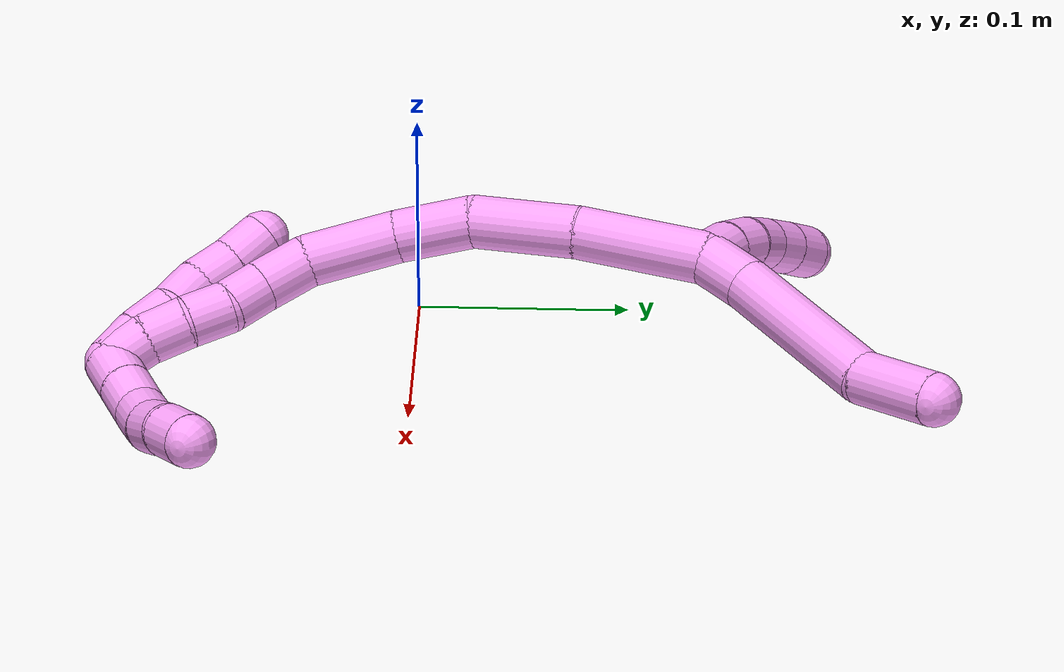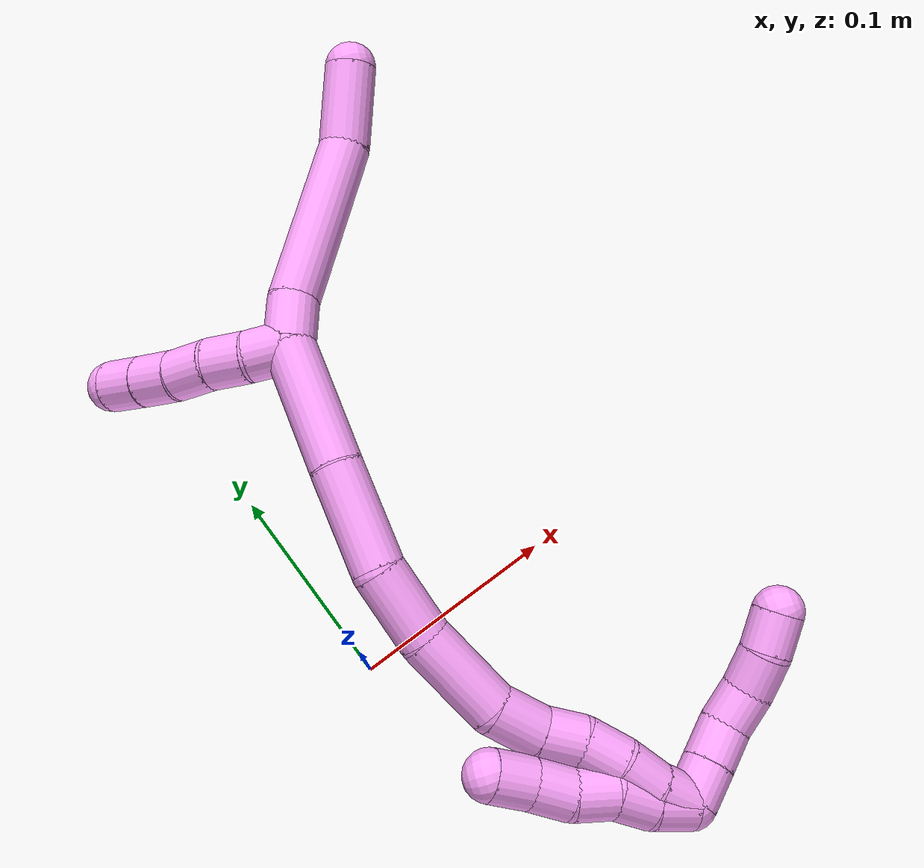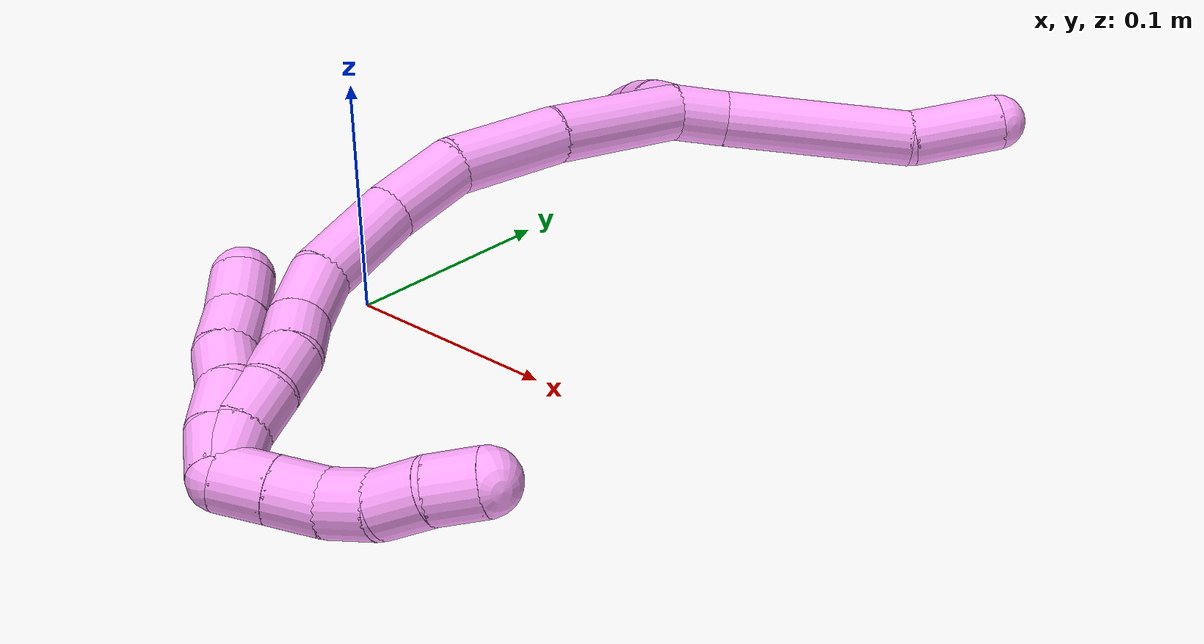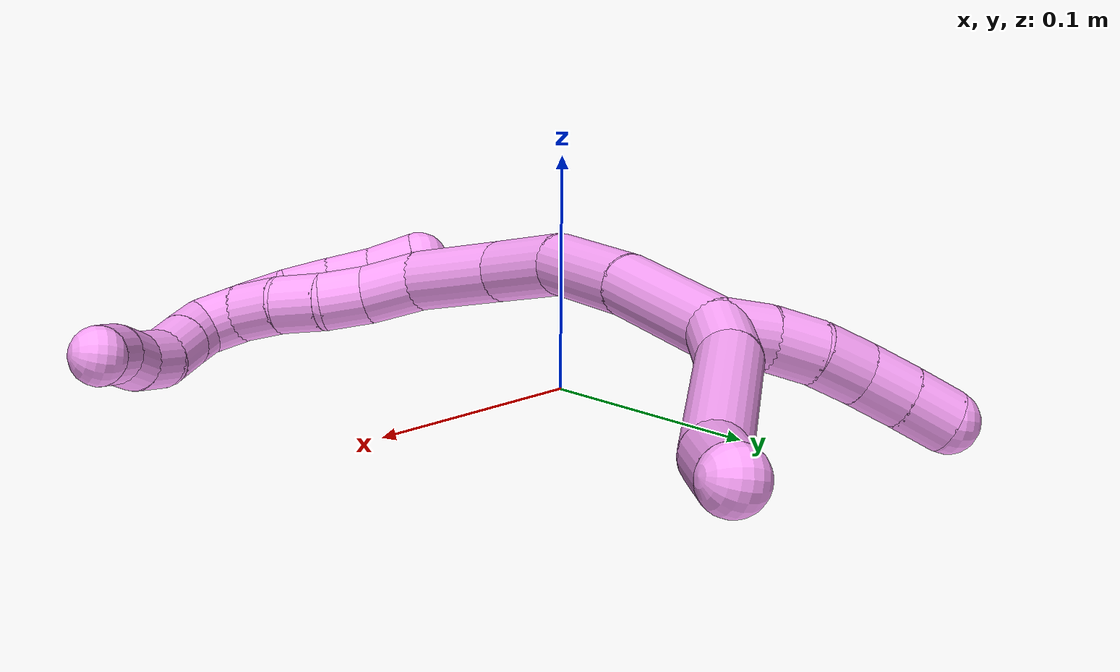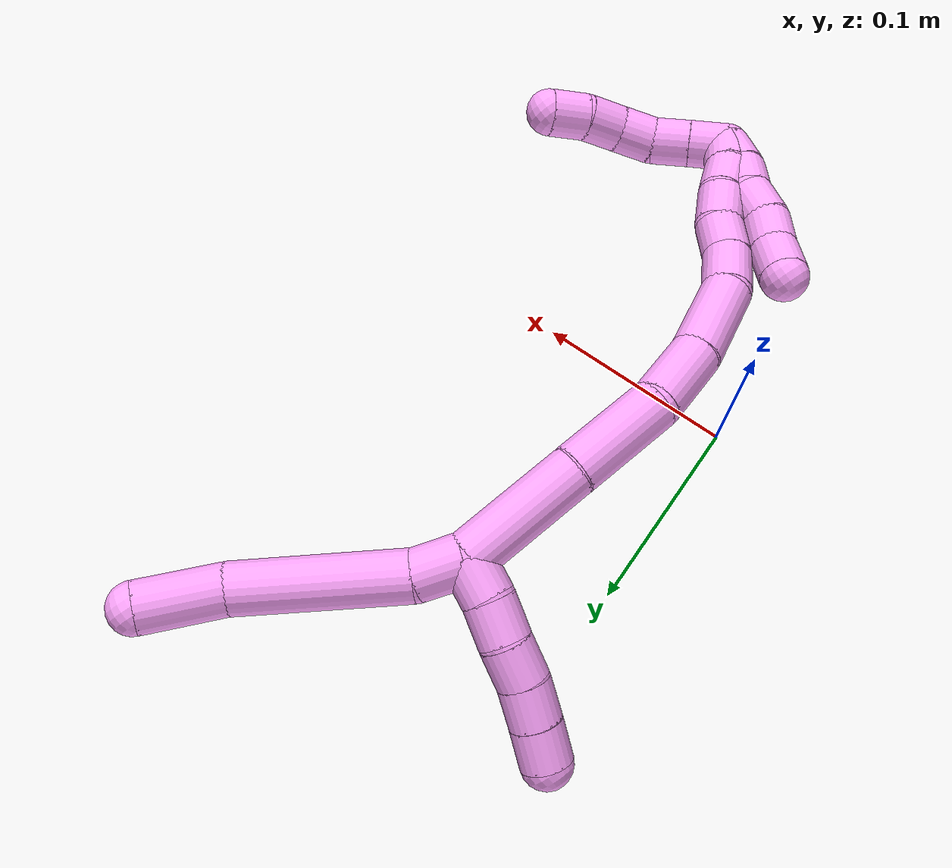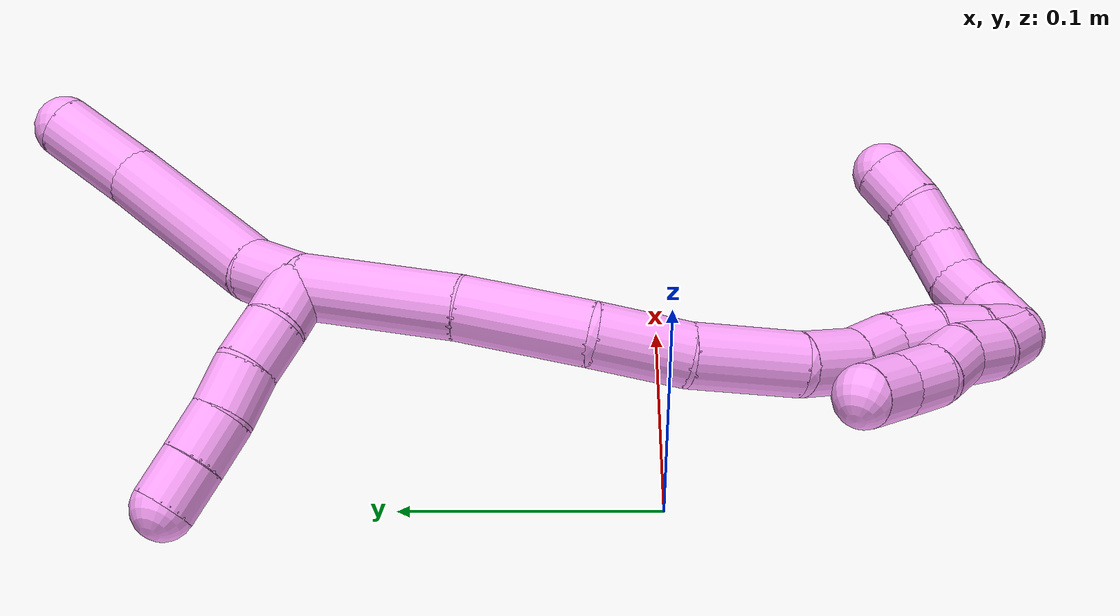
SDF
<sdf version="1.7">
 <world name="default">
  <model name="4">
   <static>0</static>
   <link name="4">
    <collision name="collision-cylinder-e_1_2_8">
     <pose>0.008982 0.007493 0.003141 -1.17384 0.835504 -0.574143</pose>
     <geometry><cylinder><radius>0.0125</radius><length>0.024223</length></cylinder></geometry>
     <surface>
      <friction><ode><mu>1.16</mu><mu2>1.16</mu2><slip1>0</slip1><slip2>0</slip2></ode></friction>
      <contact><ode><kp>1e+06</kp><kd>1</kd><max_vel>0</max_vel><min_depth>0.001</min_depth></ode></contact>
     </surface>
    </collision>
    <visual name="visual-cylinder-e_1_2_8">
     <pose>0.008982 0.007493 0.003141 -1.17384 0.835504 -0.574143</pose>
     <geometry><cylinder><radius>0.0125</radius><length>0.024223</length></cylinder></geometry>
     <material><ambient>1 0.65098 0.996078 1</ambient></material>
    </visual>
    <collision name="collision-cylinder-e_2_8_9">
     <pose>0.045566 0.039599 0.027016 -0.870733 0.708926 -0.340945</pose>
     <geometry><cylinder><radius>0.0125</radius><length>0.084796</length></cylinder></geometry>
     <surface>
      <friction><ode><mu>1.16</mu><mu2>1.16</mu2><slip1>0</slip1><slip2>0</slip2></ode></friction>
      <contact><ode><kp>1e+06</kp><kd>1</kd><max_vel>0</max_vel><min_depth>0.001</min_depth></ode></contact>
     </surface>
    </collision>
    <visual name="visual-cylinder-e_2_8_9">
     <pose>0.045566 0.039599 0.027016 -0.870733 0.708926 -0.340945</pose>
     <geometry><cylinder><radius>0.0125</radius><length>0.084796</length></cylinder></geometry>
     <material><ambient>1 0.65098 0.996078 1</ambient></material>
    </visual>
    <collision name="collision-cylinder-e_3_9_6">
     <pose>0.082894 0.080588 0.055308 -1.1384 0.494538 -0.320271</pose>
     <geometry><cylinder><radius>0.0125</radius><length>0.040981</length></cylinder></geometry>
     <surface>
      <friction><ode><mu>1.16</mu><mu2>1.16</mu2><slip1>0</slip1><slip2>0</slip2></ode></friction>
      <contact><ode><kp>1e+06</kp><kd>1</kd><max_vel>0</max_vel><min_depth>0.001</min_depth></ode></contact>
     </surface>
    </collision>
    <visual name="visual-cylinder-e_3_9_6">
     <pose>0.082894 0.080588 0.055308 -1.1384 0.494538 -0.320271</pose>
     <geometry><cylinder><radius>0.0125</radius><length>0.040981</length></cylinder></geometry>
     <material><ambient>1 0.65098 0.996078 1</ambient></material>
    </visual>
    <collision name="collision-cylinder-e_1_2_10">
     <pose>0.000532 0.000734 -0.009959 -3.06802 0.05323 -1.2524</pose>
     <geometry><cylinder><radius>0.0125</radius><length>0.02</length></cylinder></geometry>
     <surface>
      <friction><ode><mu>1.16</mu><mu2>1.16</mu2><slip1>0</slip1><slip2>0</slip2></ode></friction>
      <contact><ode><kp>1e+06</kp><kd>1</kd><max_vel>0</max_vel><min_depth>0.001</min_depth></ode></contact>
     </surface>
    </collision>
    <visual name="visual-cylinder-e_1_2_10">
     <pose>0.000532 0.000734 -0.009959 -3.06802 0.05323 -1.2524</pose>
     <geometry><cylinder><radius>0.0125</radius><length>0.02</length></cylinder></geometry>
     <material><ambient>1 0.65098 0.996078 1</ambient></material>
    </visual>
    <collision name="collision-cylinder-e_2_10_11">
     <pose>0.003194 0.002305 -0.029652 -3.05586 0.21467 -2.3839</pose>
     <geometry><cylinder><radius>0.0125</radius><length>0.02</length></cylinder></geometry>
     <surface>
      <friction><ode><mu>1.16</mu><mu2>1.16</mu2><slip1>0</slip1><slip2>0</slip2></ode></friction>
      <contact><ode><kp>1e+06</kp><kd>1</kd><max_vel>0</max_vel><min_depth>0.001</min_depth></ode></contact>
     </surface>
    </collision>
    <visual name="visual-cylinder-e_2_10_11">
     <pose>0.003194 0.002305 -0.029652 -3.05586 0.21467 -2.3839</pose>
     <geometry><cylinder><radius>0.0125</radius><length>0.02</length></cylinder></geometry>
     <material><ambient>1 0.65098 0.996078 1</ambient></material>
    </visual>
    <collision name="collision-cylinder-e_3_11_12">
     <pose>0.008138 0.002592 -0.048967 3.08433 0.285177 2.7478</pose>
     <geometry><cylinder><radius>0.0125</radius><length>0.02</length></cylinder></geometry>
     <surface>
      <friction><ode><mu>1.16</mu><mu2>1.16</mu2><slip1>0</slip1><slip2>0</slip2></ode></friction>
      <contact><ode><kp>1e+06</kp><kd>1</kd><max_vel>0</max_vel><min_depth>0.001</min_depth></ode></contact>
     </surface>
    </collision>
    <visual name="visual-cylinder-e_3_11_12">
     <pose>0.008138 0.002592 -0.048967 3.08433 0.285177 2.7478</pose>
     <geometry><cylinder><radius>0.0125</radius><length>0.02</length></cylinder></geometry>
     <material><ambient>1 0.65098 0.996078 1</ambient></material>
    </visual>
    <collision name="collision-cylinder-e_4_12_13">
     <pose>0.014731 0.002354 -0.067801 -3.10799 0.387607 -2.97077</pose>
     <geometry><cylinder><radius>0.0125</radius><length>0.02</length></cylinder></geometry>
     <surface>
      <friction><ode><mu>1.16</mu><mu2>1.16</mu2><slip1>0</slip1><slip2>0</slip2></ode></friction>
      <contact><ode><kp>1e+06</kp><kd>1</kd><max_vel>0</max_vel><min_depth>0.001</min_depth></ode></contact>
     </surface>
    </collision>
    <visual name="visual-cylinder-e_4_12_13">
     <pose>0.014731 0.002354 -0.067801 -3.10799 0.387607 -2.97077</pose>
     <geometry><cylinder><radius>0.0125</radius><length>0.02</length></cylinder></geometry>
     <material><ambient>1 0.65098 0.996078 1</ambient></material>
    </visual>
    <collision name="collision-cylinder-e_5_13_5">
     <pose>0.022581 0.003013 -0.086181 -3.10349 0.419198 -2.96294</pose>
     <geometry><cylinder><radius>0.0125</radius><length>0.02</length></cylinder></geometry>
     <surface>
      <friction><ode><mu>1.16</mu><mu2>1.16</mu2><slip1>0</slip1><slip2>0</slip2></ode></friction>
      <contact><ode><kp>1e+06</kp><kd>1</kd><max_vel>0</max_vel><min_depth>0.001</min_depth></ode></contact>
     </surface>
    </collision>
    <visual name="visual-cylinder-e_5_13_5">
     <pose>0.022581 0.003013 -0.086181 -3.10349 0.419198 -2.96294</pose>
     <geometry><cylinder><radius>0.0125</radius><length>0.02</length></cylinder></geometry>
     <material><ambient>1 0.65098 0.996078 1</ambient></material>
    </visual>
    <collision name="collision-cylinder-e_1_2_14">
     <pose>-0.018275 -0.02507 0.003044 1.44999 -0.626434 -0.55886</pose>
     <geometry><cylinder><radius>0.0125</radius><length>0.062346</length></cylinder></geometry>
     <surface>
      <friction><ode><mu>1.16</mu><mu2>1.16</mu2><slip1>0</slip1><slip2>0</slip2></ode></friction>
      <contact><ode><kp>1e+06</kp><kd>1</kd><max_vel>0</max_vel><min_depth>0.001</min_depth></ode></contact>
     </surface>
    </collision>
    <visual name="visual-cylinder-e_1_2_14">
     <pose>-0.018275 -0.02507 0.003044 1.44999 -0.626434 -0.55886</pose>
     <geometry><cylinder><radius>0.0125</radius><length>0.062346</length></cylinder></geometry>
     <material><ambient>1 0.65098 0.996078 1</ambient></material>
    </visual>
    <collision name="collision-cylinder-e_2_14_15">
     <pose>-0.04935 -0.071905 0.008453 1.46252 -0.52902 -0.476776</pose>
     <geometry><cylinder><radius>0.0125</radius><length>0.050719</length></cylinder></geometry>
     <surface>
      <friction><ode><mu>1.16</mu><mu2>1.16</mu2><slip1>0</slip1><slip2>0</slip2></ode></friction>
      <contact><ode><kp>1e+06</kp><kd>1</kd><max_vel>0</max_vel><min_depth>0.001</min_depth></ode></contact>
     </surface>
    </collision>
    <visual name="visual-cylinder-e_2_14_15">
     <pose>-0.04935 -0.071905 0.008453 1.46252 -0.52902 -0.476776</pose>
     <geometry><cylinder><radius>0.0125</radius><length>0.050719</length></cylinder></geometry>
     <material><ambient>1 0.65098 0.996078 1</ambient></material>
    </visual>
    <collision name="collision-cylinder-e_3_15_16">
     <pose>-0.066846 -0.110865 0.015333 1.31406 -0.25834 -0.199721</pose>
     <geometry><cylinder><radius>0.0125</radius><length>0.036777</length></cylinder></geometry>
     <surface>
      <friction><ode><mu>1.16</mu><mu2>1.16</mu2><slip1>0</slip1><slip2>0</slip2></ode></friction>
      <contact><ode><kp>1e+06</kp><kd>1</kd><max_vel>0</max_vel><min_depth>0.001</min_depth></ode></contact>
     </surface>
    </collision>
    <visual name="visual-cylinder-e_3_15_16">
     <pose>-0.066846 -0.110865 0.015333 1.31406 -0.25834 -0.199721</pose>
     <geometry><cylinder><radius>0.0125</radius><length>0.036777</length></cylinder></geometry>
     <material><ambient>1 0.65098 0.996078 1</ambient></material>
    </visual>
    <collision name="collision-cylinder-e_4_16_17">
     <pose>-0.076059 -0.147744 0.028781 1.14477 -0.205918 -0.132955</pose>
     <geometry><cylinder><radius>0.0125</radius><length>0.044164</length></cylinder></geometry>
     <surface>
      <friction><ode><mu>1.16</mu><mu2>1.16</mu2><slip1>0</slip1><slip2>0</slip2></ode></friction>
      <contact><ode><kp>1e+06</kp><kd>1</kd><max_vel>0</max_vel><min_depth>0.001</min_depth></ode></contact>
     </surface>
    </collision>
    <visual name="visual-cylinder-e_4_16_17">
     <pose>-0.076059 -0.147744 0.028781 1.14477 -0.205918 -0.132955</pose>
     <geometry><cylinder><radius>0.0125</radius><length>0.044164</length></cylinder></geometry>
     <material><ambient>1 0.65098 0.996078 1</ambient></material>
    </visual>
    <collision name="collision-cylinder-e_5_17_18">
     <pose>-0.080248 -0.177275 0.045393 0.908442 0.026116 0.012752</pose>
     <geometry><cylinder><radius>0.0125</radius><length>0.024984</length></cylinder></geometry>
     <surface>
      <friction><ode><mu>1.16</mu><mu2>1.16</mu2><slip1>0</slip1><slip2>0</slip2></ode></friction>
      <contact><ode><kp>1e+06</kp><kd>1</kd><max_vel>0</max_vel><min_depth>0.001</min_depth></ode></contact>
     </surface>
    </collision>
    <visual name="visual-cylinder-e_5_17_18">
     <pose>-0.080248 -0.177275 0.045393 0.908442 0.026116 0.012752</pose>
     <geometry><cylinder><radius>0.0125</radius><length>0.024984</length></cylinder></geometry>
     <material><ambient>1 0.65098 0.996078 1</ambient></material>
    </visual>
    <collision name="collision-cylinder-e_6_18_19">
     <pose>-0.079523 -0.19309 0.061113 0.638518 0.039822 0.013165</pose>
     <geometry><cylinder><radius>0.0125</radius><length>0.020041</length></cylinder></geometry>
     <surface>
      <friction><ode><mu>1.16</mu><mu2>1.16</mu2><slip1>0</slip1><slip2>0</slip2></ode></friction>
      <contact><ode><kp>1e+06</kp><kd>1</kd><max_vel>0</max_vel><min_depth>0.001</min_depth></ode></contact>
     </surface>
    </collision>
    <visual name="visual-cylinder-e_6_18_19">
     <pose>-0.079523 -0.19309 0.061113 0.638518 0.039822 0.013165</pose>
     <geometry><cylinder><radius>0.0125</radius><length>0.020041</length></cylinder></geometry>
     <material><ambient>1 0.65098 0.996078 1</ambient></material>
    </visual>
    <collision name="collision-cylinder-e_7_19_20">
     <pose>-0.0805 -0.206712 0.075951 0.844581 -0.133621 -0.06011</pose>
     <geometry><cylinder><radius>0.0125</radius><length>0.020658</length></cylinder></geometry>
     <surface>
      <friction><ode><mu>1.16</mu><mu2>1.16</mu2><slip1>0</slip1><slip2>0</slip2></ode></friction>
      <contact><ode><kp>1e+06</kp><kd>1</kd><max_vel>0</max_vel><min_depth>0.001</min_depth></ode></contact>
     </surface>
    </collision>
    <visual name="visual-cylinder-e_7_19_20">
     <pose>-0.0805 -0.206712 0.075951 0.844581 -0.133621 -0.06011</pose>
     <geometry><cylinder><radius>0.0125</radius><length>0.020658</length></cylinder></geometry>
     <material><ambient>1 0.65098 0.996078 1</ambient></material>
    </visual>
    <collision name="collision-cylinder-e_8_20_21">
     <pose>-0.08267 -0.222947 0.088072 1.01561 -0.078516 -0.043708</pose>
     <geometry><cylinder><radius>0.0125</radius><length>0.02026</length></cylinder></geometry>
     <surface>
      <friction><ode><mu>1.16</mu><mu2>1.16</mu2><slip1>0</slip1><slip2>0</slip2></ode></friction>
      <contact><ode><kp>1e+06</kp><kd>1</kd><max_vel>0</max_vel><min_depth>0.001</min_depth></ode></contact>
     </surface>
    </collision>
    <visual name="visual-cylinder-e_8_20_21">
     <pose>-0.08267 -0.222947 0.088072 1.01561 -0.078516 -0.043708</pose>
     <geometry><cylinder><radius>0.0125</radius><length>0.02026</length></cylinder></geometry>
     <material><ambient>1 0.65098 0.996078 1</ambient></material>
    </visual>
    <collision name="collision-cylinder-e_9_21_1">
     <pose>-0.082421 -0.239366 0.099559 0.904221 0.104286 0.050683</pose>
     <geometry><cylinder><radius>0.0125</radius><length>0.02005</length></cylinder></geometry>
     <surface>
      <friction><ode><mu>1.16</mu><mu2>1.16</mu2><slip1>0</slip1><slip2>0</slip2></ode></friction>
      <contact><ode><kp>1e+06</kp><kd>1</kd><max_vel>0</max_vel><min_depth>0.001</min_depth></ode></contact>
     </surface>
    </collision>
    <visual name="visual-cylinder-e_9_21_1">
     <pose>-0.082421 -0.239366 0.099559 0.904221 0.104286 0.050683</pose>
     <geometry><cylinder><radius>0.0125</radius><length>0.02005</length></cylinder></geometry>
     <material><ambient>1 0.65098 0.996078 1</ambient></material>
    </visual>
    <collision name="collision-cylinder-e_1_1_22">
     <pose>-0.07535 -0.242682 0.112299 -0.602242 0.647017 -0.207509</pose>
     <geometry><cylinder><radius>0.0125</radius><length>0.02</length></cylinder></geometry>
     <surface>
      <friction><ode><mu>1.16</mu><mu2>1.16</mu2><slip1>0</slip1><slip2>0</slip2></ode></friction>
      <contact><ode><kp>1e+06</kp><kd>1</kd><max_vel>0</max_vel><min_depth>0.001</min_depth></ode></contact>
     </surface>
    </collision>
    <visual name="visual-cylinder-e_1_1_22">
     <pose>-0.07535 -0.242682 0.112299 -0.602242 0.647017 -0.207509</pose>
     <geometry><cylinder><radius>0.0125</radius><length>0.02</length></cylinder></geometry>
     <material><ambient>1 0.65098 0.996078 1</ambient></material>
    </visual>
    <collision name="collision-cylinder-e_2_22_23">
     <pose>-0.06317 -0.233656 0.125343 -0.608403 0.662652 -0.215165</pose>
     <geometry><cylinder><radius>0.0125</radius><length>0.02</length></cylinder></geometry>
     <surface>
      <friction><ode><mu>1.16</mu><mu2>1.16</mu2><slip1>0</slip1><slip2>0</slip2></ode></friction>
      <contact><ode><kp>1e+06</kp><kd>1</kd><max_vel>0</max_vel><min_depth>0.001</min_depth></ode></contact>
     </surface>
    </collision>
    <visual name="visual-cylinder-e_2_22_23">
     <pose>-0.06317 -0.233656 0.125343 -0.608403 0.662652 -0.215165</pose>
     <geometry><cylinder><radius>0.0125</radius><length>0.02</length></cylinder></geometry>
     <material><ambient>1 0.65098 0.996078 1</ambient></material>
    </visual>
    <collision name="collision-cylinder-e_3_23_24">
     <pose>-0.053632 -0.223787 0.139544 -0.60646 0.345353 -0.109032</pose>
     <geometry><cylinder><radius>0.0125</radius><length>0.02</length></cylinder></geometry>
     <surface>
      <friction><ode><mu>1.16</mu><mu2>1.16</mu2><slip1>0</slip1><slip2>0</slip2></ode></friction>
      <contact><ode><kp>1e+06</kp><kd>1</kd><max_vel>0</max_vel><min_depth>0.001</min_depth></ode></contact>
     </surface>
    </collision>
    <visual name="visual-cylinder-e_3_23_24">
     <pose>-0.053632 -0.223787 0.139544 -0.60646 0.345353 -0.109032</pose>
     <geometry><cylinder><radius>0.0125</radius><length>0.02</length></cylinder></geometry>
     <material><ambient>1 0.65098 0.996078 1</ambient></material>
    </visual>
    <collision name="collision-cylinder-e_4_24_25">
     <pose>-0.048515 -0.211211 0.153982 -0.821734 0.174099 -0.076004</pose>
     <geometry><cylinder><radius>0.0125</radius><length>0.02</length></cylinder></geometry>
     <surface>
      <friction><ode><mu>1.16</mu><mu2>1.16</mu2><slip1>0</slip1><slip2>0</slip2></ode></friction>
      <contact><ode><kp>1e+06</kp><kd>1</kd><max_vel>0</max_vel><min_depth>0.001</min_depth></ode></contact>
     </surface>
    </collision>
    <visual name="visual-cylinder-e_4_24_25">
     <pose>-0.048515 -0.211211 0.153982 -0.821734 0.174099 -0.076004</pose>
     <geometry><cylinder><radius>0.0125</radius><length>0.02</length></cylinder></geometry>
     <material><ambient>1 0.65098 0.996078 1</ambient></material>
    </visual>
    <collision name="collision-cylinder-e_5_25_4">
     <pose>-0.043118 -0.196765 0.16654 -0.890683 0.375166 -0.180712</pose>
     <geometry><cylinder><radius>0.0125</radius><length>0.02</length></cylinder></geometry>
     <surface>
      <friction><ode><mu>1.16</mu><mu2>1.16</mu2><slip1>0</slip1><slip2>0</slip2></ode></friction>
      <contact><ode><kp>1e+06</kp><kd>1</kd><max_vel>0</max_vel><min_depth>0.001</min_depth></ode></contact>
     </surface>
    </collision>
    <visual name="visual-cylinder-e_5_25_4">
     <pose>-0.043118 -0.196765 0.16654 -0.890683 0.375166 -0.180712</pose>
     <geometry><cylinder><radius>0.0125</radius><length>0.02</length></cylinder></geometry>
     <material><ambient>1 0.65098 0.996078 1</ambient></material>
    </visual>
    <collision name="collision-cylinder-e_1_1_26">
     <pose>-0.084028 -0.242031 0.097586 -2.57556 -0.26825 0.868831</pose>
     <geometry><cylinder><radius>0.0125</radius><length>0.02</length></cylinder></geometry>
     <surface>
      <friction><ode><mu>1.16</mu><mu2>1.16</mu2><slip1>0</slip1><slip2>0</slip2></ode></friction>
      <contact><ode><kp>1e+06</kp><kd>1</kd><max_vel>0</max_vel><min_depth>0.001</min_depth></ode></contact>
     </surface>
    </collision>
    <visual name="visual-cylinder-e_1_1_26">
     <pose>-0.084028 -0.242031 0.097586 -2.57556 -0.26825 0.868831</pose>
     <geometry><cylinder><radius>0.0125</radius><length>0.02</length></cylinder></geometry>
     <material><ambient>1 0.65098 0.996078 1</ambient></material>
    </visual>
    <collision name="collision-cylinder-e_2_26_27">
     <pose>-0.088105 -0.229833 0.082476 -2.35219 -0.143093 0.34076</pose>
     <geometry><cylinder><radius>0.0125</radius><length>0.02</length></cylinder></geometry>
     <surface>
      <friction><ode><mu>1.16</mu><mu2>1.16</mu2><slip1>0</slip1><slip2>0</slip2></ode></friction>
      <contact><ode><kp>1e+06</kp><kd>1</kd><max_vel>0</max_vel><min_depth>0.001</min_depth></ode></contact>
     </surface>
    </collision>
    <visual name="visual-cylinder-e_2_26_27">
     <pose>-0.088105 -0.229833 0.082476 -2.35219 -0.143093 0.34076</pose>
     <geometry><cylinder><radius>0.0125</radius><length>0.02</length></cylinder></geometry>
     <material><ambient>1 0.65098 0.996078 1</ambient></material>
    </visual>
    <collision name="collision-cylinder-e_3_27_28">
     <pose>-0.091707 -0.218548 0.066723 -2.69015 -0.219336 0.894221</pose>
     <geometry><cylinder><radius>0.0125</radius><length>0.02</length></cylinder></geometry>
     <surface>
      <friction><ode><mu>1.16</mu><mu2>1.16</mu2><slip1>0</slip1><slip2>0</slip2></ode></friction>
      <contact><ode><kp>1e+06</kp><kd>1</kd><max_vel>0</max_vel><min_depth>0.001</min_depth></ode></contact>
     </surface>
    </collision>
    <visual name="visual-cylinder-e_3_27_28">
     <pose>-0.091707 -0.218548 0.066723 -2.69015 -0.219336 0.894221</pose>
     <geometry><cylinder><radius>0.0125</radius><length>0.02</length></cylinder></geometry>
     <material><ambient>1 0.65098 0.996078 1</ambient></material>
    </visual>
    <collision name="collision-cylinder-e_4_28_29">
     <pose>-0.094656 -0.207682 0.050475 -2.41708 -0.077421 0.203681</pose>
     <geometry><cylinder><radius>0.0125</radius><length>0.02</length></cylinder></geometry>
     <surface>
      <friction><ode><mu>1.16</mu><mu2>1.16</mu2><slip1>0</slip1><slip2>0</slip2></ode></friction>
      <contact><ode><kp>1e+06</kp><kd>1</kd><max_vel>0</max_vel><min_depth>0.001</min_depth></ode></contact>
     </surface>
    </collision>
    <visual name="visual-cylinder-e_4_28_29">
     <pose>-0.094656 -0.207682 0.050475 -2.41708 -0.077421 0.203681</pose>
     <geometry><cylinder><radius>0.0125</radius><length>0.02</length></cylinder></geometry>
     <material><ambient>1 0.65098 0.996078 1</ambient></material>
    </visual>
    <collision name="collision-cylinder-e_5_29_3">
     <pose>-0.097284 -0.194637 0.035585 -2.42725 -0.186533 0.491187</pose>
     <geometry><cylinder><radius>0.0125</radius><length>0.02</length></cylinder></geometry>
     <surface>
      <friction><ode><mu>1.16</mu><mu2>1.16</mu2><slip1>0</slip1><slip2>0</slip2></ode></friction>
      <contact><ode><kp>1e+06</kp><kd>1</kd><max_vel>0</max_vel><min_depth>0.001</min_depth></ode></contact>
     </surface>
    </collision>
    <visual name="visual-cylinder-e_5_29_3">
     <pose>-0.097284 -0.194637 0.035585 -2.42725 -0.186533 0.491187</pose>
     <geometry><cylinder><radius>0.0125</radius><length>0.02</length></cylinder></geometry>
     <material><ambient>1 0.65098 0.996078 1</ambient></material>
    </visual>
    <collision name="collision-sphere-3">
     <pose>-0.099138 -0.188199 0.028161 0 -0 0</pose>
     <geometry><sphere><radius>0.0125</radius></sphere></geometry>
     <surface>
      <friction><ode><mu>1.16</mu><mu2>1.16</mu2><slip1>0</slip1><slip2>0</slip2></ode></friction>
      <contact><ode><kp>1e+06</kp><kd>1</kd><max_vel>0</max_vel><min_depth>0.001</min_depth></ode></contact>
     </surface>
    </collision>
    <visual name="visual-sphere-3">
     <pose>-0.099138 -0.188199 0.028161 0 -0 0</pose>
     <geometry><sphere><radius>0.0125</radius></sphere></geometry>
     <material><ambient>1 0.65098 0.996078 1</ambient></material>
    </visual>
    <collision name="collision-sphere-29">
     <pose>-0.095429 -0.201074 0.043009 0 -0 0</pose>
     <geometry><sphere><radius>0.0125</radius></sphere></geometry>
     <surface>
      <friction><ode><mu>1.16</mu><mu2>1.16</mu2><slip1>0</slip1><slip2>0</slip2></ode></friction>
      <contact><ode><kp>1e+06</kp><kd>1</kd><max_vel>0</max_vel><min_depth>0.001</min_depth></ode></contact>
     </surface>
    </collision>
    <visual name="visual-sphere-29">
     <pose>-0.095429 -0.201074 0.043009 0 -0 0</pose>
     <geometry><sphere><radius>0.0125</radius></sphere></geometry>
     <material><ambient>1 0.65098 0.996078 1</ambient></material>
    </visual>
    <collision name="collision-sphere-28">
     <pose>-0.093882 -0.21429 0.05794 0 -0 0</pose>
     <geometry><sphere><radius>0.0125</radius></sphere></geometry>
     <surface>
      <friction><ode><mu>1.16</mu><mu2>1.16</mu2><slip1>0</slip1><slip2>0</slip2></ode></friction>
      <contact><ode><kp>1e+06</kp><kd>1</kd><max_vel>0</max_vel><min_depth>0.001</min_depth></ode></contact>
     </surface>
    </collision>
    <visual name="visual-sphere-28">
     <pose>-0.093882 -0.21429 0.05794 0 -0 0</pose>
     <geometry><sphere><radius>0.0125</radius></sphere></geometry>
     <material><ambient>1 0.65098 0.996078 1</ambient></material>
    </visual>
    <collision name="collision-sphere-27">
     <pose>-0.089531 -0.222806 0.075506 0 -0 0</pose>
     <geometry><sphere><radius>0.0125</radius></sphere></geometry>
     <surface>
      <friction><ode><mu>1.16</mu><mu2>1.16</mu2><slip1>0</slip1><slip2>0</slip2></ode></friction>
      <contact><ode><kp>1e+06</kp><kd>1</kd><max_vel>0</max_vel><min_depth>0.001</min_depth></ode></contact>
     </surface>
    </collision>
    <visual name="visual-sphere-27">
     <pose>-0.089531 -0.222806 0.075506 0 -0 0</pose>
     <geometry><sphere><radius>0.0125</radius></sphere></geometry>
     <material><ambient>1 0.65098 0.996078 1</ambient></material>
    </visual>
    <collision name="collision-sphere-26">
     <pose>-0.086679 -0.23686 0.089447 0 -0 0</pose>
     <geometry><sphere><radius>0.0125</radius></sphere></geometry>
     <surface>
      <friction><ode><mu>1.16</mu><mu2>1.16</mu2><slip1>0</slip1><slip2>0</slip2></ode></friction>
      <contact><ode><kp>1e+06</kp><kd>1</kd><max_vel>0</max_vel><min_depth>0.001</min_depth></ode></contact>
     </surface>
    </collision>
    <visual name="visual-sphere-26">
     <pose>-0.086679 -0.23686 0.089447 0 -0 0</pose>
     <geometry><sphere><radius>0.0125</radius></sphere></geometry>
     <material><ambient>1 0.65098 0.996078 1</ambient></material>
    </visual>
    <collision name="collision-sphere-4">
     <pose>-0.039454 -0.18953 0.172391 0 -0 0</pose>
     <geometry><sphere><radius>0.0125</radius></sphere></geometry>
     <surface>
      <friction><ode><mu>1.16</mu><mu2>1.16</mu2><slip1>0</slip1><slip2>0</slip2></ode></friction>
      <contact><ode><kp>1e+06</kp><kd>1</kd><max_vel>0</max_vel><min_depth>0.001</min_depth></ode></contact>
     </surface>
    </collision>
    <visual name="visual-sphere-4">
     <pose>-0.039454 -0.18953 0.172391 0 -0 0</pose>
     <geometry><sphere><radius>0.0125</radius></sphere></geometry>
     <material><ambient>1 0.65098 0.996078 1</ambient></material>
    </visual>
    <collision name="collision-sphere-25">
     <pose>-0.046782 -0.203999 0.160689 0 -0 0</pose>
     <geometry><sphere><radius>0.0125</radius></sphere></geometry>
     <surface>
      <friction><ode><mu>1.16</mu><mu2>1.16</mu2><slip1>0</slip1><slip2>0</slip2></ode></friction>
      <contact><ode><kp>1e+06</kp><kd>1</kd><max_vel>0</max_vel><min_depth>0.001</min_depth></ode></contact>
     </surface>
    </collision>
    <visual name="visual-sphere-25">
     <pose>-0.046782 -0.203999 0.160689 0 -0 0</pose>
     <geometry><sphere><radius>0.0125</radius></sphere></geometry>
     <material><ambient>1 0.65098 0.996078 1</ambient></material>
    </visual>
    <collision name="collision-sphere-24">
     <pose>-0.050247 -0.218424 0.147275 0 -0 0</pose>
     <geometry><sphere><radius>0.0125</radius></sphere></geometry>
     <surface>
      <friction><ode><mu>1.16</mu><mu2>1.16</mu2><slip1>0</slip1><slip2>0</slip2></ode></friction>
      <contact><ode><kp>1e+06</kp><kd>1</kd><max_vel>0</max_vel><min_depth>0.001</min_depth></ode></contact>
     </surface>
    </collision>
    <visual name="visual-sphere-24">
     <pose>-0.050247 -0.218424 0.147275 0 -0 0</pose>
     <geometry><sphere><radius>0.0125</radius></sphere></geometry>
     <material><ambient>1 0.65098 0.996078 1</ambient></material>
    </visual>
    <collision name="collision-sphere-23">
     <pose>-0.057017 -0.22915 0.131812 0 -0 0</pose>
     <geometry><sphere><radius>0.0125</radius></sphere></geometry>
     <surface>
      <friction><ode><mu>1.16</mu><mu2>1.16</mu2><slip1>0</slip1><slip2>0</slip2></ode></friction>
      <contact><ode><kp>1e+06</kp><kd>1</kd><max_vel>0</max_vel><min_depth>0.001</min_depth></ode></contact>
     </surface>
    </collision>
    <visual name="visual-sphere-23">
     <pose>-0.057017 -0.22915 0.131812 0 -0 0</pose>
     <geometry><sphere><radius>0.0125</radius></sphere></geometry>
     <material><ambient>1 0.65098 0.996078 1</ambient></material>
    </visual>
    <collision name="collision-sphere-22">
     <pose>-0.069322 -0.238162 0.118874 0 -0 0</pose>
     <geometry><sphere><radius>0.0125</radius></sphere></geometry>
     <surface>
      <friction><ode><mu>1.16</mu><mu2>1.16</mu2><slip1>0</slip1><slip2>0</slip2></ode></friction>
      <contact><ode><kp>1e+06</kp><kd>1</kd><max_vel>0</max_vel><min_depth>0.001</min_depth></ode></contact>
     </surface>
    </collision>
    <visual name="visual-sphere-22">
     <pose>-0.069322 -0.238162 0.118874 0 -0 0</pose>
     <geometry><sphere><radius>0.0125</radius></sphere></geometry>
     <material><ambient>1 0.65098 0.996078 1</ambient></material>
    </visual>
    <collision name="collision-sphere-1">
     <pose>-0.081378 -0.247202 0.105724 0 -0 0</pose>
     <geometry><sphere><radius>0.0125</radius></sphere></geometry>
     <surface>
      <friction><ode><mu>1.16</mu><mu2>1.16</mu2><slip1>0</slip1><slip2>0</slip2></ode></friction>
      <contact><ode><kp>1e+06</kp><kd>1</kd><max_vel>0</max_vel><min_depth>0.001</min_depth></ode></contact>
     </surface>
    </collision>
    <visual name="visual-sphere-1">
     <pose>-0.081378 -0.247202 0.105724 0 -0 0</pose>
     <geometry><sphere><radius>0.0125</radius></sphere></geometry>
     <material><ambient>1 0.65098 0.996078 1</ambient></material>
    </visual>
    <collision name="collision-sphere-21">
     <pose>-0.083465 -0.231529 0.093395 0 -0 0</pose>
     <geometry><sphere><radius>0.0125</radius></sphere></geometry>
     <surface>
      <friction><ode><mu>1.16</mu><mu2>1.16</mu2><slip1>0</slip1><slip2>0</slip2></ode></friction>
      <contact><ode><kp>1e+06</kp><kd>1</kd><max_vel>0</max_vel><min_depth>0.001</min_depth></ode></contact>
     </surface>
    </collision>
    <visual name="visual-sphere-21">
     <pose>-0.083465 -0.231529 0.093395 0 -0 0</pose>
     <geometry><sphere><radius>0.0125</radius></sphere></geometry>
     <material><ambient>1 0.65098 0.996078 1</ambient></material>
    </visual>
    <collision name="collision-sphere-11">
     <pose>0.005325 0.003141 -0.039387 0 -0 0</pose>
     <geometry><sphere><radius>0.0125</radius></sphere></geometry>
     <surface>
      <friction><ode><mu>1.16</mu><mu2>1.16</mu2><slip1>0</slip1><slip2>0</slip2></ode></friction>
      <contact><ode><kp>1e+06</kp><kd>1</kd><max_vel>0</max_vel><min_depth>0.001</min_depth></ode></contact>
     </surface>
    </collision>
    <visual name="visual-sphere-11">
     <pose>0.005325 0.003141 -0.039387 0 -0 0</pose>
     <geometry><sphere><radius>0.0125</radius></sphere></geometry>
     <material><ambient>1 0.65098 0.996078 1</ambient></material>
    </visual>
    <collision name="collision-sphere-10">
     <pose>0.001064 0.001468 -0.019918 0 -0 0</pose>
     <geometry><sphere><radius>0.0125</radius></sphere></geometry>
     <surface>
      <friction><ode><mu>1.16</mu><mu2>1.16</mu2><slip1>0</slip1><slip2>0</slip2></ode></friction>
      <contact><ode><kp>1e+06</kp><kd>1</kd><max_vel>0</max_vel><min_depth>0.001</min_depth></ode></contact>
     </surface>
    </collision>
    <visual name="visual-sphere-10">
     <pose>0.001064 0.001468 -0.019918 0 -0 0</pose>
     <geometry><sphere><radius>0.0125</radius></sphere></geometry>
     <material><ambient>1 0.65098 0.996078 1</ambient></material>
    </visual>
    <collision name="collision-sphere-6">
     <pose>0.092619 0.096963 0.062866 0 -0 0</pose>
     <geometry><sphere><radius>0.0125</radius></sphere></geometry>
     <surface>
      <friction><ode><mu>1.16</mu><mu2>1.16</mu2><slip1>0</slip1><slip2>0</slip2></ode></friction>
      <contact><ode><kp>1e+06</kp><kd>1</kd><max_vel>0</max_vel><min_depth>0.001</min_depth></ode></contact>
     </surface>
    </collision>
    <visual name="visual-sphere-6">
     <pose>0.092619 0.096963 0.062866 0 -0 0</pose>
     <geometry><sphere><radius>0.0125</radius></sphere></geometry>
     <material><ambient>1 0.65098 0.996078 1</ambient></material>
    </visual>
    <collision name="collision-sphere-9">
     <pose>0.073168 0.064212 0.04775 0 -0 0</pose>
     <geometry><sphere><radius>0.0125</radius></sphere></geometry>
     <surface>
      <friction><ode><mu>1.16</mu><mu2>1.16</mu2><slip1>0</slip1><slip2>0</slip2></ode></friction>
      <contact><ode><kp>1e+06</kp><kd>1</kd><max_vel>0</max_vel><min_depth>0.001</min_depth></ode></contact>
     </surface>
    </collision>
    <visual name="visual-sphere-9">
     <pose>0.073168 0.064212 0.04775 0 -0 0</pose>
     <geometry><sphere><radius>0.0125</radius></sphere></geometry>
     <material><ambient>1 0.65098 0.996078 1</ambient></material>
    </visual>
    <collision name="collision-sphere-2">
     <geometry><sphere><radius>0.0125</radius></sphere></geometry>
     <surface>
      <friction><ode><mu>1.16</mu><mu2>1.16</mu2><slip1>0</slip1><slip2>0</slip2></ode></friction>
      <contact><ode><kp>1e+06</kp><kd>1</kd><max_vel>0</max_vel><min_depth>0.001</min_depth></ode></contact>
     </surface>
    </collision>
    <visual name="visual-sphere-2">
     <geometry><sphere><radius>0.0125</radius></sphere></geometry>
     <material><ambient>1 0.65098 0.996078 1</ambient></material>
    </visual>
    <collision name="collision-sphere-19">
     <pose>-0.079124 -0.199058 0.069153 0 -0 0</pose>
     <geometry><sphere><radius>0.0125</radius></sphere></geometry>
     <surface>
      <friction><ode><mu>1.16</mu><mu2>1.16</mu2><slip1>0</slip1><slip2>0</slip2></ode></friction>
      <contact><ode><kp>1e+06</kp><kd>1</kd><max_vel>0</max_vel><min_depth>0.001</min_depth></ode></contact>
     </surface>
    </collision>
    <visual name="visual-sphere-19">
     <pose>-0.079124 -0.199058 0.069153 0 -0 0</pose>
     <geometry><sphere><radius>0.0125</radius></sphere></geometry>
     <material><ambient>1 0.65098 0.996078 1</ambient></material>
    </visual>
    <collision name="collision-sphere-8">
     <pose>0.017964 0.014985 0.006282 0 -0 0</pose>
     <geometry><sphere><radius>0.0125</radius></sphere></geometry>
     <surface>
      <friction><ode><mu>1.16</mu><mu2>1.16</mu2><slip1>0</slip1><slip2>0</slip2></ode></friction>
      <contact><ode><kp>1e+06</kp><kd>1</kd><max_vel>0</max_vel><min_depth>0.001</min_depth></ode></contact>
     </surface>
    </collision>
    <visual name="visual-sphere-8">
     <pose>0.017964 0.014985 0.006282 0 -0 0</pose>
     <geometry><sphere><radius>0.0125</radius></sphere></geometry>
     <material><ambient>1 0.65098 0.996078 1</ambient></material>
    </visual>
    <collision name="collision-sphere-12">
     <pose>0.010951 0.002043 -0.058548 0 -0 0</pose>
     <geometry><sphere><radius>0.0125</radius></sphere></geometry>
     <surface>
      <friction><ode><mu>1.16</mu><mu2>1.16</mu2><slip1>0</slip1><slip2>0</slip2></ode></friction>
      <contact><ode><kp>1e+06</kp><kd>1</kd><max_vel>0</max_vel><min_depth>0.001</min_depth></ode></contact>
     </surface>
    </collision>
    <visual name="visual-sphere-12">
     <pose>0.010951 0.002043 -0.058548 0 -0 0</pose>
     <geometry><sphere><radius>0.0125</radius></sphere></geometry>
     <material><ambient>1 0.65098 0.996078 1</ambient></material>
    </visual>
    <collision name="collision-sphere-13">
     <pose>0.018511 0.002665 -0.077053 0 -0 0</pose>
     <geometry><sphere><radius>0.0125</radius></sphere></geometry>
     <surface>
      <friction><ode><mu>1.16</mu><mu2>1.16</mu2><slip1>0</slip1><slip2>0</slip2></ode></friction>
      <contact><ode><kp>1e+06</kp><kd>1</kd><max_vel>0</max_vel><min_depth>0.001</min_depth></ode></contact>
     </surface>
    </collision>
    <visual name="visual-sphere-13">
     <pose>0.018511 0.002665 -0.077053 0 -0 0</pose>
     <geometry><sphere><radius>0.0125</radius></sphere></geometry>
     <material><ambient>1 0.65098 0.996078 1</ambient></material>
    </visual>
    <collision name="collision-sphere-5">
     <pose>0.026651 0.003361 -0.095309 0 -0 0</pose>
     <geometry><sphere><radius>0.0125</radius></sphere></geometry>
     <surface>
      <friction><ode><mu>1.16</mu><mu2>1.16</mu2><slip1>0</slip1><slip2>0</slip2></ode></friction>
      <contact><ode><kp>1e+06</kp><kd>1</kd><max_vel>0</max_vel><min_depth>0.001</min_depth></ode></contact>
     </surface>
    </collision>
    <visual name="visual-sphere-5">
     <pose>0.026651 0.003361 -0.095309 0 -0 0</pose>
     <geometry><sphere><radius>0.0125</radius></sphere></geometry>
     <material><ambient>1 0.65098 0.996078 1</ambient></material>
    </visual>
    <collision name="collision-sphere-14">
     <pose>-0.036551 -0.05014 0.006087 0 -0 0</pose>
     <geometry><sphere><radius>0.0125</radius></sphere></geometry>
     <surface>
      <friction><ode><mu>1.16</mu><mu2>1.16</mu2><slip1>0</slip1><slip2>0</slip2></ode></friction>
      <contact><ode><kp>1e+06</kp><kd>1</kd><max_vel>0</max_vel><min_depth>0.001</min_depth></ode></contact>
     </surface>
    </collision>
    <visual name="visual-sphere-14">
     <pose>-0.036551 -0.05014 0.006087 0 -0 0</pose>
     <geometry><sphere><radius>0.0125</radius></sphere></geometry>
     <material><ambient>1 0.65098 0.996078 1</ambient></material>
    </visual>
    <collision name="collision-sphere-15">
     <pose>-0.062148 -0.093669 0.010819 0 -0 0</pose>
     <geometry><sphere><radius>0.0125</radius></sphere></geometry>
     <surface>
      <friction><ode><mu>1.16</mu><mu2>1.16</mu2><slip1>0</slip1><slip2>0</slip2></ode></friction>
      <contact><ode><kp>1e+06</kp><kd>1</kd><max_vel>0</max_vel><min_depth>0.001</min_depth></ode></contact>
     </surface>
    </collision>
    <visual name="visual-sphere-15">
     <pose>-0.062148 -0.093669 0.010819 0 -0 0</pose>
     <geometry><sphere><radius>0.0125</radius></sphere></geometry>
     <material><ambient>1 0.65098 0.996078 1</ambient></material>
    </visual>
    <collision name="collision-sphere-16">
     <pose>-0.071544 -0.128061 0.019848 0 -0 0</pose>
     <geometry><sphere><radius>0.0125</radius></sphere></geometry>
     <surface>
      <friction><ode><mu>1.16</mu><mu2>1.16</mu2><slip1>0</slip1><slip2>0</slip2></ode></friction>
      <contact><ode><kp>1e+06</kp><kd>1</kd><max_vel>0</max_vel><min_depth>0.001</min_depth></ode></contact>
     </surface>
    </collision>
    <visual name="visual-sphere-16">
     <pose>-0.071544 -0.128061 0.019848 0 -0 0</pose>
     <geometry><sphere><radius>0.0125</radius></sphere></geometry>
     <material><ambient>1 0.65098 0.996078 1</ambient></material>
    </visual>
    <collision name="collision-sphere-17">
     <pose>-0.080574 -0.167428 0.037714 0 -0 0</pose>
     <geometry><sphere><radius>0.0125</radius></sphere></geometry>
     <surface>
      <friction><ode><mu>1.16</mu><mu2>1.16</mu2><slip1>0</slip1><slip2>0</slip2></ode></friction>
      <contact><ode><kp>1e+06</kp><kd>1</kd><max_vel>0</max_vel><min_depth>0.001</min_depth></ode></contact>
     </surface>
    </collision>
    <visual name="visual-sphere-17">
     <pose>-0.080574 -0.167428 0.037714 0 -0 0</pose>
     <geometry><sphere><radius>0.0125</radius></sphere></geometry>
     <material><ambient>1 0.65098 0.996078 1</ambient></material>
    </visual>
    <collision name="collision-sphere-18">
     <pose>-0.079922 -0.187122 0.053073 0 -0 0</pose>
     <geometry><sphere><radius>0.0125</radius></sphere></geometry>
     <surface>
      <friction><ode><mu>1.16</mu><mu2>1.16</mu2><slip1>0</slip1><slip2>0</slip2></ode></friction>
      <contact><ode><kp>1e+06</kp><kd>1</kd><max_vel>0</max_vel><min_depth>0.001</min_depth></ode></contact>
     </surface>
    </collision>
    <visual name="visual-sphere-18">
     <pose>-0.079922 -0.187122 0.053073 0 -0 0</pose>
     <geometry><sphere><radius>0.0125</radius></sphere></geometry>
     <material><ambient>1 0.65098 0.996078 1</ambient></material>
    </visual>
    <collision name="collision-sphere-20">
     <pose>-0.081876 -0.214366 0.082749 0 -0 0</pose>
     <geometry><sphere><radius>0.0125</radius></sphere></geometry>
     <surface>
      <friction><ode><mu>1.16</mu><mu2>1.16</mu2><slip1>0</slip1><slip2>0</slip2></ode></friction>
      <contact><ode><kp>1e+06</kp><kd>1</kd><max_vel>0</max_vel><min_depth>0.001</min_depth></ode></contact>
     </surface>
    </collision>
    <visual name="visual-sphere-20">
     <pose>-0.081876 -0.214366 0.082749 0 -0 0</pose>
     <geometry><sphere><radius>0.0125</radius></sphere></geometry>
     <material><ambient>1 0.65098 0.996078 1</ambient></material>
    </visual>
    <inertial>
     <pose>-0.032504 -0.099536 0.04074 0 -0 0</pose>
     <mass>0.75</mass>
     <inertia><ixx>7.3e-05</ixx><ixy>0</ixy><ixz>0</ixz><iyy>4.2e-05</iyy><iyz>0</iyz><izz>-1.5e-05</izz></inertia>
    </inertial>
   </link>
   <pose>0.056632 0.136822 0.062604 1.19304 0.938784 0.909778</pose>
  </model>
 </world>
</sdf>
